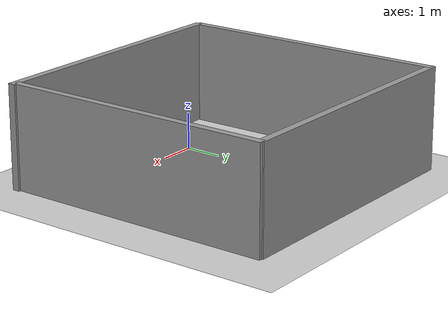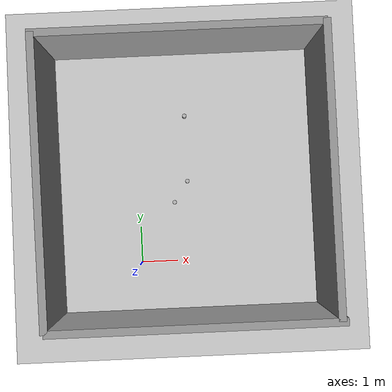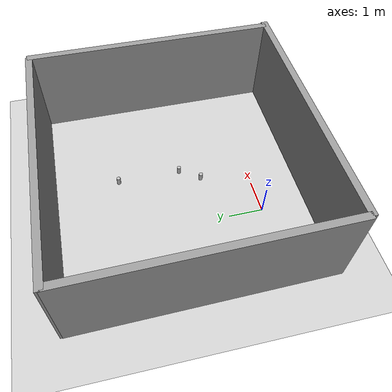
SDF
<sdf version="1.4">
 <world name="default">
  <light name="sun" type="directional">
   <pose>0 0 10 0 -0 0</pose>
   <diffuse>0.8 0.8 0.8 1</diffuse>
   <specular>0.2 0.2 0.2 1</specular>
   <attenuation>
    <range>1000</range>
    <constant>0.9</constant>
    <linear>0.01</linear>
    <quadratic>0.001</quadratic>
   </attenuation>
   <direction>-0.5 0.1 -0.9</direction>
  </light>
  <model name="ground_plane">
   <static>1</static>
   <link name="link">
    <collision name="collision">
     <geometry><plane><normal>0 0 1</normal><size>100 100</size></plane></geometry>
     <surface><friction><ode><mu>100</mu><mu2>50</mu2></ode></friction></surface>
    </collision>
    <visual name="visual">
     <cast_shadows>0</cast_shadows>
     <geometry><plane><normal>0 0 1</normal><size>100 100</size></plane></geometry>
     <material>
      <script><uri>file://media/materials/scripts/gazebo.material</uri><name>Gazebo/Grey</name></script>
     </material>
    </visual>
    <velocity_decay><linear>0</linear><angular>0</angular></velocity_decay>
   </link>
  </model>
  <physics type="ode">
   <max_step_size>0.001</max_step_size>
   <real_time_factor>1</real_time_factor>
   <real_time_update_rate>1000</real_time_update_rate>
   <gravity>0 0 -9.8</gravity>
  </physics>
  <scene><ambient>0.4 0.4 0.4 1</ambient><background>0.7 0.7 0.7 1</background><shadows>1</shadows></scene>
  <spherical_coordinates>
   <surface_model>EARTH_WGS84</surface_model>
   <latitude_deg>0</latitude_deg>
   <longitude_deg>0</longitude_deg>
   <elevation>0</elevation>
   <heading_deg>0</heading_deg>
  </spherical_coordinates>
  <model name="beer_1">
   <link name="link">
    <pose>0 0 0.115 0 -0 0</pose>
    <inertial>
     <mass>0.39</mass>
     <inertia><ixx>0.00058</ixx><ixy>0</ixy><ixz>0</ixz><iyy>0.00058</iyy><iyz>0</iyz><izz>0.00019</izz></inertia>
    </inertial>
    <collision name="collision">
     <geometry><cylinder><radius>0.0313754</radius><length>0.131206</length></cylinder></geometry>
    </collision>
    <visual name="visual">
     <geometry><cylinder><radius>0.055</radius><length>0.23</length></cylinder></geometry>
     <material>
      <script>
       <uri>model://beer/materials/scripts</uri>
       <uri>model://beer/materials/textures</uri>
       <name>Beer/Diffuse</name>
      </script>
     </material>
    </visual>
    <velocity_decay><linear>0</linear><angular>0</angular></velocity_decay>
   </link>
   <pose>1.00007 1.65182 0.725594 2.5e-05 9e-06 0.036537</pose>
   <static>0</static>
  </model>
  <model name="beer_2">
   <link name="link">
    <pose>0 0 0.115 0 -0 0</pose>
    <inertial>
     <mass>0.39</mass>
     <inertia><ixx>0.00058</ixx><ixy>0</ixy><ixz>0</ixz><iyy>0.00058</iyy><iyz>0</iyz><izz>0.00019</izz></inertia>
    </inertial>
    <collision name="collision">
     <geometry><cylinder><radius>0.0353501</radius><length>0.147828</length></cylinder></geometry>
    </collision>
    <visual name="visual">
     <geometry><cylinder><radius>0.055</radius><length>0.23</length></cylinder></geometry>
     <material>
      <script>
       <uri>model://beer/materials/scripts</uri>
       <uri>model://beer/materials/textures</uri>
       <name>Beer/Diffuse</name>
      </script>
     </material>
    </visual>
    <velocity_decay><linear>0</linear><angular>0</angular></velocity_decay>
   </link>
   <pose>1.36929 2.2159 0.733914 7e-06 -1e-05 0.011426</pose>
   <static>0</static>
  </model>
  <model name="beer_3">
   <link name="link">
    <pose>0 0 0.115 0 -0 0</pose>
    <inertial>
     <mass>0.39</mass>
     <inertia><ixx>0.00058</ixx><ixy>0</ixy><ixz>0</ixz><iyy>0.00058</iyy><iyz>0</iyz><izz>0.00019</izz></inertia>
    </inertial>
    <collision name="collision">
     <geometry><cylinder><radius>0.0370279</radius><length>0.154844</length></cylinder></geometry>
    </collision>
    <visual name="visual">
     <geometry><cylinder><radius>0.055</radius><length>0.23</length></cylinder></geometry>
     <material>
      <script>
       <uri>model://beer/materials/scripts</uri>
       <uri>model://beer/materials/textures</uri>
       <name>Beer/Diffuse</name>
      </script>
     </material>
    </visual>
    <velocity_decay><linear>0</linear><angular>0</angular></velocity_decay>
   </link>
   <pose>1.36058 4.00006 0.737423 1e-05 -2.1e-05 0.000276</pose>
   <static>0</static>
  </model>
  <model name="grey_wall">
   <static>1</static>
   <link name="link">
    <pose>0 0 1.4 0 -0 0</pose>
    <collision name="collision"><geometry><box><size>7.5 0.2 2.8</size></box></geometry></collision>
    <visual name="visual">
     <cast_shadows>0</cast_shadows>
     <geometry><box><size>7.5 0.2 2.8</size></box></geometry>
     <material>
      <script>
       <uri>model://grey_wall/materials/scripts</uri>
       <uri>model://grey_wall/materials/textures</uri>
       <name>vrc/grey_wall</name>
      </script>
     </material>
    </visual>
    <velocity_decay><linear>0</linear><angular>0</angular></velocity_decay>
   </link>
   <pose>1.26571 6 0 0 -0 0</pose>
  </model>
  <model name="grey_wall_0">
   <static>1</static>
   <link name="link">
    <pose>0 0 1.4 0 -0 0</pose>
    <collision name="collision"><geometry><box><size>7.5 0.2 2.8</size></box></geometry></collision>
    <visual name="visual">
     <cast_shadows>0</cast_shadows>
     <geometry><box><size>7.5 0.2 2.8</size></box></geometry>
     <material>
      <script>
       <uri>model://grey_wall/materials/scripts</uri>
       <uri>model://grey_wall/materials/textures</uri>
       <name>vrc/grey_wall</name>
      </script>
     </material>
    </visual>
    <velocity_decay><linear>0</linear><angular>0</angular></velocity_decay>
   </link>
   <pose>-2.34976 2.28622 0 0 0 -1.55901</pose>
  </model>
  <model name="grey_wall_1">
   <static>1</static>
   <link name="link">
    <pose>0 0 1.4 0 -0 0</pose>
    <collision name="collision"><geometry><box><size>7.5 0.2 2.8</size></box></geometry></collision>
    <visual name="visual">
     <cast_shadows>0</cast_shadows>
     <geometry><box><size>7.5 0.2 2.8</size></box></geometry>
     <material>
      <script>
       <uri>model://grey_wall/materials/scripts</uri>
       <uri>model://grey_wall/materials/textures</uri>
       <name>vrc/grey_wall</name>
      </script>
     </material>
    </visual>
    <velocity_decay><linear>0</linear><angular>0</angular></velocity_decay>
   </link>
   <pose>1.41756 -1.45255 0 0 -0 0</pose>
  </model>
  <model name="grey_wall_2">
   <static>1</static>
   <link name="link">
    <pose>0 0 1.4 0 -0 0</pose>
    <collision name="collision"><geometry><box><size>7.5 0.2 2.8</size></box></geometry></collision>
    <visual name="visual">
     <cast_shadows>0</cast_shadows>
     <geometry><box><size>7.5 0.2 2.8</size></box></geometry>
     <material>
      <script>
       <uri>model://grey_wall/materials/scripts</uri>
       <uri>model://grey_wall/materials/textures</uri>
       <name>vrc/grey_wall</name>
      </script>
     </material>
    </visual>
    <velocity_decay><linear>0</linear><angular>0</angular></velocity_decay>
   </link>
   <pose>5.00558 2.3107 -0 0 0 -1.56967</pose>
  </model>
 </world>
</sdf>
